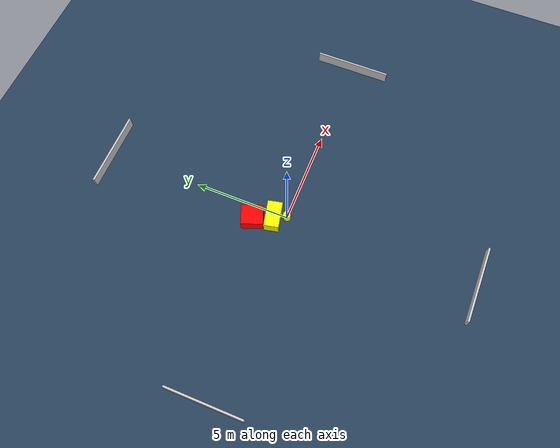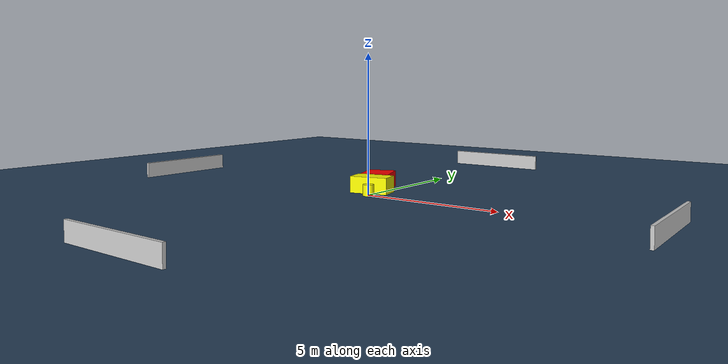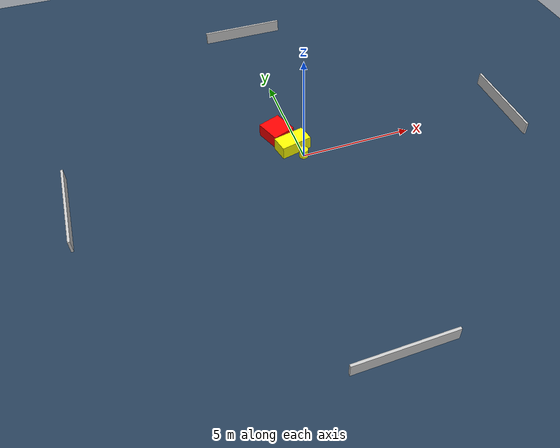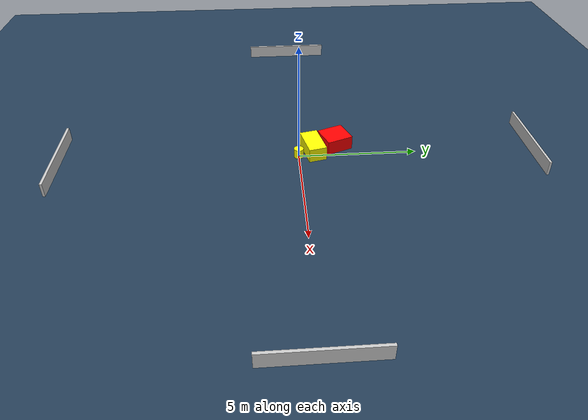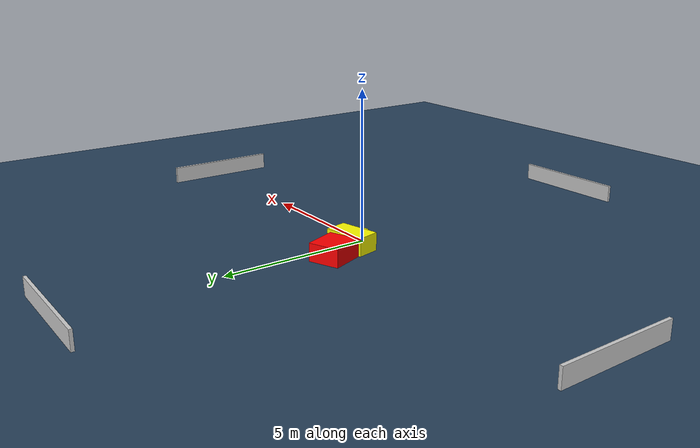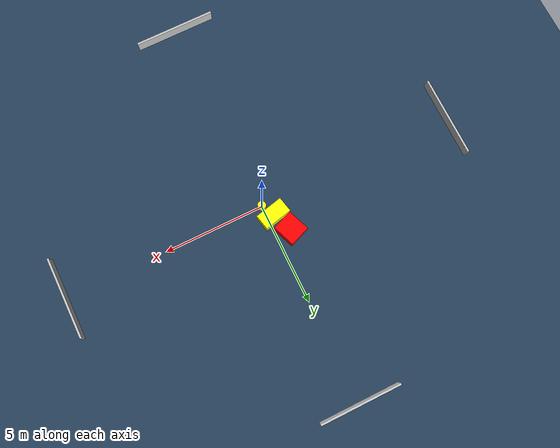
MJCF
<?xml version="1.0" ?>
<mujoco model="generated_environment">
  <option timestep="0.01" integrator="RK4" cone="elliptic"/>
  <default>
    <geom density="1"/>
  </default>
  <asset>
    <texture builtin="gradient" height="3072" name="skybox" rgb1="0.3 0.5 0.7" rgb2="0 0 0" type="skybox" width="512"/>
    <texture builtin="checker" height="300" name="groundplane" rgb1="0.2 0.3 0.4" rgb2="0.1 0.2 0.3" type="2d" width="300"/>
    <material name="groundplane" reflectance="0.2" texrepeat="5 5" texture="groundplane"/>
  </asset>
  <worldbody>
    <light dir="0 0 -1" directional="true" pos="0 0 1.5"/>
    <geom condim="3" friction="0.5 0.005 0.001" material="groundplane" name="floor" pos="0 0 0" size="0 0 0.05" type="plane"/>
    <body name="walls">
      <geom name="wall_1" condim="4" pos="-10.0 0.0 0.3" rgba="0.800000011920929 0.800000011920929 0.800000011920929 1.0" size="0.05 2.0 0.3" type="box"/>
      <geom name="wall_2" condim="4" pos="10.0 0.0 0.3" rgba="0.800000011920929 0.800000011920929 0.800000011920929 1.0" size="0.05 2.0 0.3" type="box"/>
      <geom name="wall_3" condim="4" pos="0.0 -10.0 0.3" rgba="0.800000011920929 0.800000011920929 0.800000011920929 1.0" size="2.0 0.05 0.3" type="box"/>
      <geom name="wall_4" condim="4" pos="0.0 10.0 0.3" rgba="0.800000011920929 0.800000011920929 0.800000011920929 1.0" size="2.0 0.05 0.3" type="box"/>
    </body>
    <body name="robot">
      <joint name="joint_x" type="slide" pos="0 0 0" axis="1 0 0"/>
      <joint name="joint_y" type="slide" pos="0 0 0" axis="0 1 0"/>
      <geom name="robot" type="cylinder" pos="0.0 0.0 0.2" size="0.2 0.2 0.0" mass="5.0" friction="1.0 0.005 0.0001" condim="4" rgba="1.0 1.0 0.0 1.0"/>
    </body>
    <body name="obstacle_1_movable">
      <geom name="obstacle_1_movable" condim="4" pos="-0.2978152300069492 0.6329760983931086 0.3" euler="0 0 102.73005843907508" friction="0.0 0.005 0.001" rgba="1.0 1.0 0.0 1.0" size="0.38268046962233115 0.7009828777879574 0.3" type="box" mass="0.1"/>
      <joint type="free"/>
    </body>
    <body name="obstacle_2_static">
      <geom name="obstacle_2_static" condim="4" pos="-0.7271012939620738 1.6095721371483371 0.3" euler="0 0 21.15366948998446" friction="0.0 0.005 0.001" rgba="1.0 0.0 0.0 1.0" size="0.5280151097203025 0.5700633623035638 0.3" type="box"/>
    </body>
  </worldbody>
  <actuator>
    <motor name="actuator_x" joint="joint_x" gear="1" ctrlrange="-1 1"/>
    <motor name="actuator_y" joint="joint_y" gear="1" ctrlrange="-1 1"/>
  </actuator>
</mujoco>
